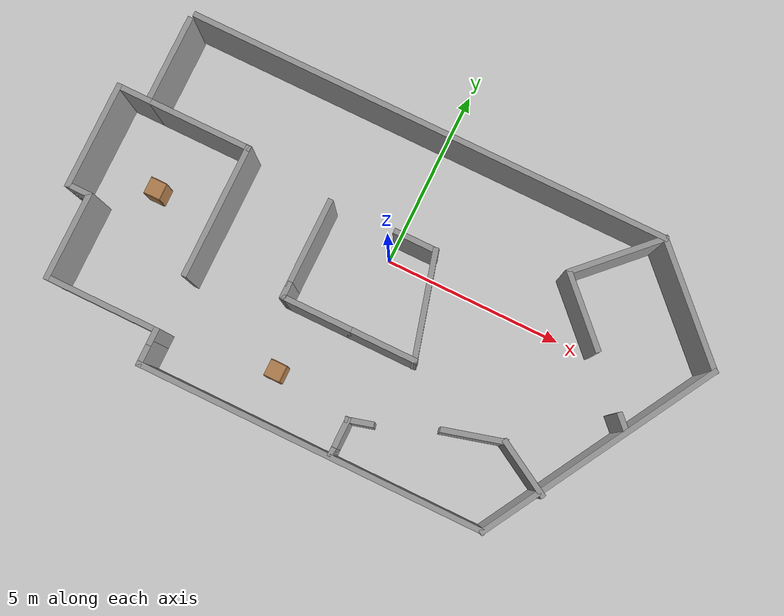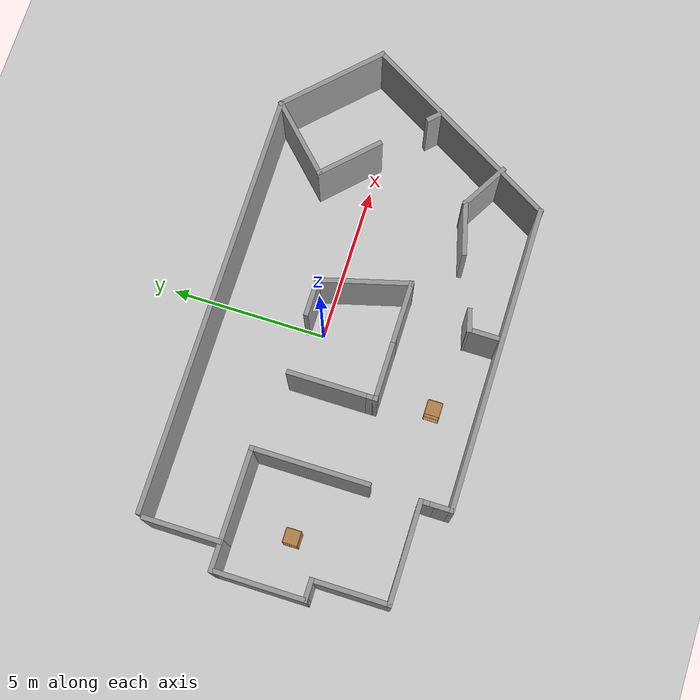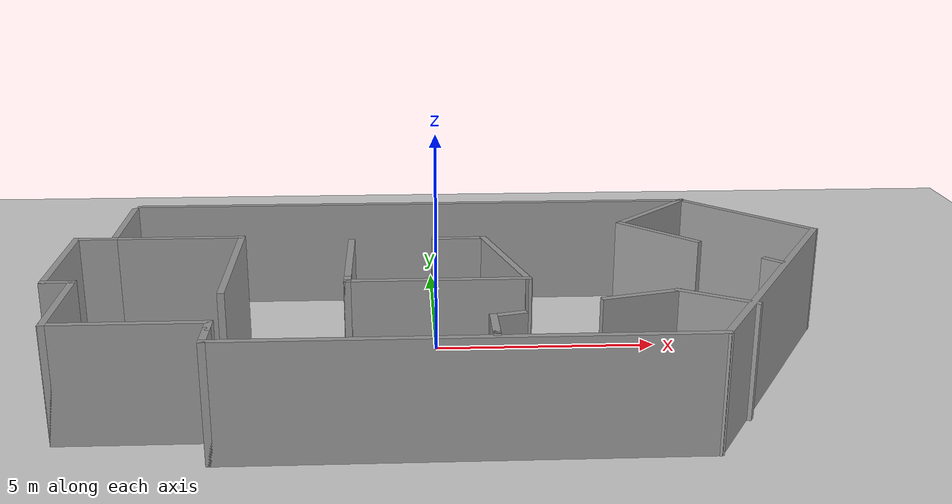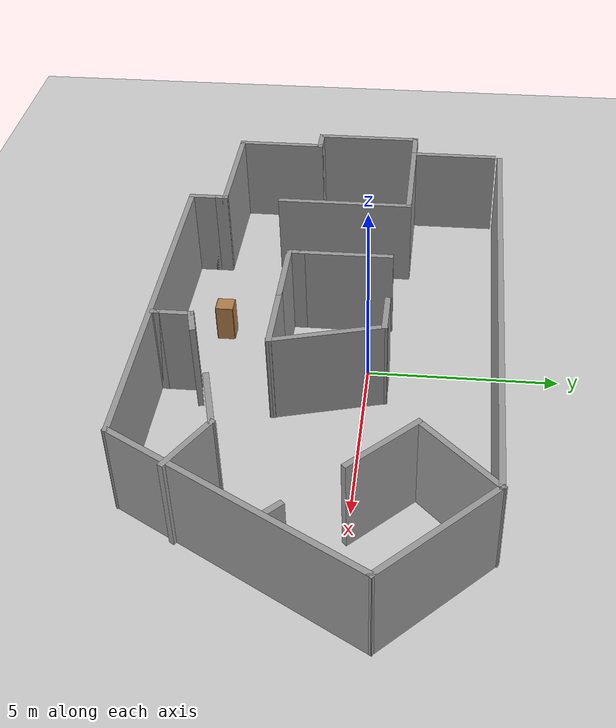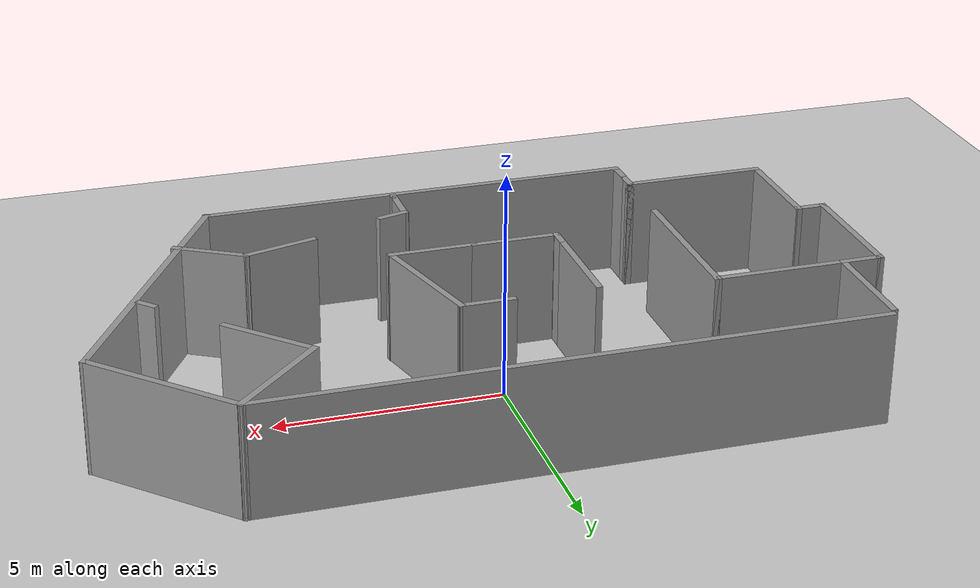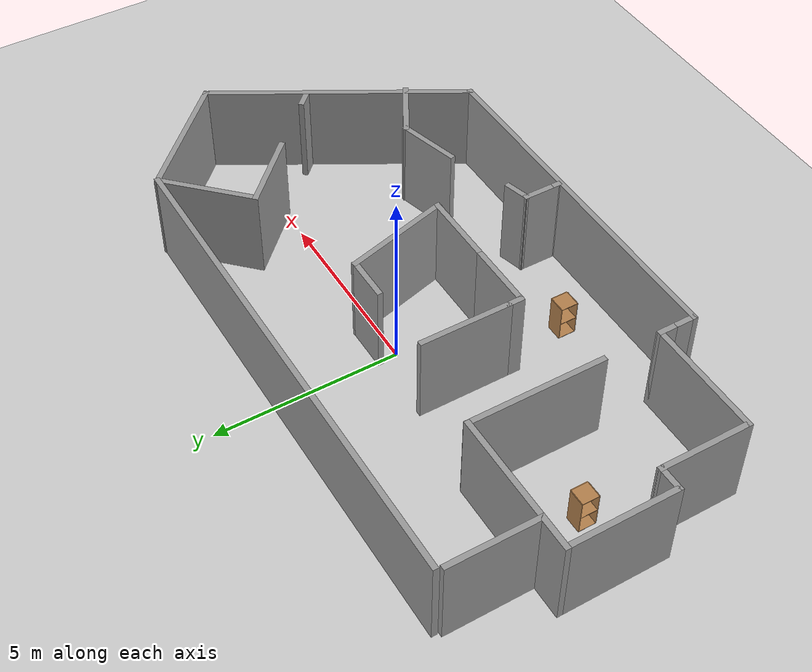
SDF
<sdf version="1.7">
 <world name="default">
  <light name="sun" type="directional">
   <pose>0 0 10 0 -0 0</pose>
   <diffuse>0.8 0.8 0.8 1</diffuse>
   <specular>0.2 0.2 0.2 1</specular>
   <attenuation>
    <range>1000</range>
    <constant>0.9</constant>
    <linear>0.01</linear>
    <quadratic>0.001</quadratic>
   </attenuation>
   <direction>-0.5 0.1 -0.9</direction>
   <spot><inner_angle>0</inner_angle><outer_angle>0</outer_angle><falloff>0</falloff></spot>
  </light>
  <model name="ground_plane">
   <static>1</static>
   <link name="link">
    <collision name="collision">
     <geometry><plane><normal>0 0 1</normal><size>100 100</size></plane></geometry>
     <surface>
      <contact><collide_bitmask>65535</collide_bitmask></contact>
      <friction><ode><mu>100</mu><mu2>50</mu2></ode></friction>
     </surface>
    </collision>
    <visual name="visual">
     <cast_shadows>0</cast_shadows>
     <geometry><plane><normal>0 0 1</normal><size>100 100</size></plane></geometry>
     <material>
      <script><uri>file://media/materials/scripts/gazebo.material</uri><name>Gazebo/Grey</name></script>
     </material>
    </visual>
   </link>
  </model>
  <gravity>0 0 -9.8</gravity>
  <magnetic_field>6e-06 2.3e-05 -4.2e-05</magnetic_field>
  <atmosphere type="adiabatic"/>
  <physics type="ode">
   <max_step_size>0.001</max_step_size>
   <real_time_factor>1</real_time_factor>
   <real_time_update_rate>1000</real_time_update_rate>
  </physics>
  <scene><ambient>0.4 0.4 0.4 1</ambient><background>0.7 0.7 0.7 1</background><shadows>1</shadows></scene>
  <spherical_coordinates>
   <surface_model>EARTH_WGS84</surface_model>
   <latitude_deg>0</latitude_deg>
   <longitude_deg>0</longitude_deg>
   <elevation>0</elevation>
   <heading_deg>0</heading_deg>
  </spherical_coordinates>
  <model name="layer2">
   <pose>0.35471 -1.02226 0 0 -0 0</pose>
   <link name="Wall_10">
    <collision name="Wall_10_Collision">
     <geometry><box><size>0.75 0.15 2.5</size></box></geometry>
     <pose>0 0 1.25 0 -0 0</pose>
    </collision>
    <visual name="Wall_10_Visual">
     <pose>0 0 1.25 0 -0 0</pose>
     <geometry><box><size>0.75 0.15 2.5</size></box></geometry>
     <material>
      <script><uri>file://media/materials/scripts/gazebo.material</uri><name>Gazebo/Grey</name></script>
      <ambient>1 1 1 1</ambient>
     </material>
     <meta><layer>0</layer></meta>
    </visual>
    <pose>-4.74053 -4.04899 0 0 -0 -1.5708</pose>
   </link>
   <link name="Wall_11">
    <collision name="Wall_11_Collision">
     <geometry><box><size>9.75 0.15 2.5</size></box></geometry>
     <pose>0 0 1.25 0 -0 0</pose>
    </collision>
    <visual name="Wall_11_Visual">
     <pose>0 0 1.25 0 -0 0</pose>
     <geometry><box><size>9.75 0.15 2.5</size></box></geometry>
     <material>
      <script><uri>file://media/materials/scripts/gazebo.material</uri><name>Gazebo/Grey</name></script>
      <ambient>1 1 1 1</ambient>
     </material>
     <meta><layer>0</layer></meta>
    </visual>
    <pose>0.059467 -4.34899 0 0 -0 0</pose>
   </link>
   <link name="Wall_14">
    <collision name="Wall_14_Collision">
     <geometry><box><size>7.25 0.15 2.5</size></box></geometry>
     <pose>0 0 1.25 0 -0 0</pose>
    </collision>
    <visual name="Wall_14_Visual">
     <pose>0 0 1.25 0 -0 0</pose>
     <geometry><box><size>7.25 0.15 2.5</size></box></geometry>
     <material>
      <script><uri>file://media/materials/scripts/gazebo.material</uri><name>Gazebo/Grey</name></script>
      <ambient>1 1 1 1</ambient>
     </material>
     <meta><layer>0</layer></meta>
    </visual>
    <pose>6.63447 -1.2746 0 0 -0 1.0472</pose>
   </link>
   <link name="Wall_15">
    <collision name="Wall_15_Collision">
     <geometry><box><size>3.75 0.15 2.5</size></box></geometry>
     <pose>0 0 1.25 0 -0 0</pose>
    </collision>
    <visual name="Wall_15_Visual">
     <pose>0 0 1.25 0 -0 0</pose>
     <geometry><box><size>3.75 0.15 2.5</size></box></geometry>
     <material>
      <script><uri>file://media/materials/scripts/gazebo.material</uri><name>Gazebo/Grey</name></script>
      <ambient>1 1 1 1</ambient>
     </material>
     <meta><layer>0</layer></meta>
    </visual>
    <pose>7.13668 3.07258 0 0 -0 2.35619</pose>
   </link>
   <link name="Wall_16">
    <collision name="Wall_16_Collision">
     <geometry><box><size>13.5 0.15 2.5</size></box></geometry>
     <pose>0 0 1.25 0 -0 0</pose>
    </collision>
    <visual name="Wall_16_Visual">
     <pose>0 0 1.25 0 -0 0</pose>
     <geometry><box><size>13.5 0.15 2.5</size></box></geometry>
     <material>
      <script><uri>file://media/materials/scripts/gazebo.material</uri><name>Gazebo/Grey</name></script>
      <ambient>1 1 1 1</ambient>
     </material>
     <meta><layer>0</layer></meta>
    </visual>
    <pose>-0.811118 4.34537 0 0 -0 3.14159</pose>
   </link>
   <link name="Wall_18">
    <collision name="Wall_18_Collision">
     <geometry><box><size>2.5 0.15 2.5</size></box></geometry>
     <pose>0 0 1.25 0 -0 0</pose>
    </collision>
    <visual name="Wall_18_Visual">
     <pose>0 0 1.25 0 -0 0</pose>
     <geometry><box><size>2.5 0.15 2.5</size></box></geometry>
     <material>
      <script><uri>file://media/materials/scripts/gazebo.material</uri><name>Gazebo/Grey</name></script>
      <ambient>1 1 1 1</ambient>
     </material>
     <meta><layer>0</layer></meta>
    </visual>
    <pose>-2.23724 0.28407 0 0 -0 -1.5708</pose>
   </link>
   <link name="Wall_22">
    <collision name="Wall_22_Collision">
     <geometry><box><size>0.5 0.15 2.5</size></box></geometry>
     <pose>0 0 1.25 0 -0 0</pose>
    </collision>
    <visual name="Wall_22_Visual">
     <pose>0 0 1.25 0 -0 0</pose>
     <geometry><box><size>0.5 0.15 2.5</size></box></geometry>
     <material>
      <script><uri>file://media/materials/scripts/gazebo.material</uri><name>Gazebo/Grey</name></script>
      <ambient>1 1 1 1</ambient>
     </material>
     <meta><layer>0</layer></meta>
    </visual>
    <pose>-2.23724 -1.06593 0 0 -0 -1.5708</pose>
   </link>
   <link name="Wall_23">
    <collision name="Wall_23_Collision">
     <geometry><box><size>0.16 0.15 2.5</size></box></geometry>
     <pose>0 0 1.25 0 -0 0</pose>
    </collision>
    <visual name="Wall_23_Visual">
     <pose>0 0 1.25 0 -0 0</pose>
     <geometry><box><size>0.16 0.15 2.5</size></box></geometry>
     <material>
      <script><uri>file://media/materials/scripts/gazebo.material</uri><name>Gazebo/Grey</name></script>
      <ambient>1 1 1 1</ambient>
     </material>
     <meta><layer>0</layer></meta>
    </visual>
    <pose>-2.23224 -1.24093 0 0 -0 0</pose>
   </link>
   <link name="Wall_24">
    <collision name="Wall_24_Collision">
     <geometry><box><size>2 0.15 2.5</size></box></geometry>
     <pose>0 0 1.25 0 -0 0</pose>
    </collision>
    <visual name="Wall_24_Visual">
     <pose>0 0 1.25 0 -0 0</pose>
     <geometry><box><size>2 0.15 2.5</size></box></geometry>
     <material>
      <script><uri>file://media/materials/scripts/gazebo.material</uri><name>Gazebo/Grey</name></script>
      <ambient>1 1 1 1</ambient>
     </material>
     <meta><layer>0</layer></meta>
    </visual>
    <pose>-1.30224 -1.24093 0 0 -0 0</pose>
   </link>
   <link name="Wall_28">
    <collision name="Wall_28_Collision">
     <geometry><box><size>0.15 0.15 2.5</size></box></geometry>
     <pose>0 0 1.25 0 -0 0</pose>
    </collision>
    <visual name="Wall_28_Visual">
     <pose>0 0 1.25 0 -0 0</pose>
     <geometry><box><size>0.15 0.15 2.5</size></box></geometry>
     <material>
      <script><uri>file://media/materials/scripts/gazebo.material</uri><name>Gazebo/Grey</name></script>
      <ambient>1 1 1 1</ambient>
     </material>
     <meta><layer>0</layer></meta>
    </visual>
    <pose>5.86388 4.34537 0 0 -0 0</pose>
   </link>
   <link name="Wall_29">
    <collision name="Wall_29_Collision">
     <geometry><box><size>2.75 0.15 2.5</size></box></geometry>
     <pose>0 0 1.25 0 -0 0</pose>
    </collision>
    <visual name="Wall_29_Visual">
     <pose>0 0 1.25 0 -0 0</pose>
     <geometry><box><size>2.75 0.15 2.5</size></box></geometry>
     <material>
      <script><uri>file://media/materials/scripts/gazebo.material</uri><name>Gazebo/Grey</name></script>
      <ambient>1 1 1 1</ambient>
     </material>
     <meta><layer>0</layer></meta>
    </visual>
    <pose>4.94464 3.42614 0 0 -0 -2.35619</pose>
   </link>
   <link name="Wall_3">
    <collision name="Wall_3_Collision">
     <geometry><box><size>2.5 0.15 2.5</size></box></geometry>
     <pose>0 0 1.25 0 -0 0</pose>
    </collision>
    <visual name="Wall_3_Visual">
     <pose>0 0 1.25 0 -0 0</pose>
     <geometry><box><size>2.5 0.15 2.5</size></box></geometry>
     <material>
      <script><uri>file://media/materials/scripts/gazebo.material</uri><name>Gazebo/Grey</name></script>
      <ambient>1 1 1 1</ambient>
     </material>
     <meta><layer>0</layer></meta>
    </visual>
    <pose>-7.59053 2.97601 0 0 -0 -1.5708</pose>
   </link>
   <link name="Wall_30">
    <collision name="Wall_30_Collision">
     <geometry><box><size>2.25 0.15 2.5</size></box></geometry>
     <pose>0 0 1.25 0 -0 0</pose>
    </collision>
    <visual name="Wall_30_Visual">
     <pose>0 0 1.25 0 -0 0</pose>
     <geometry><box><size>2.25 0.15 2.5</size></box></geometry>
     <material>
      <script><uri>file://media/materials/scripts/gazebo.material</uri><name>Gazebo/Grey</name></script>
      <ambient>1 1 1 1</ambient>
     </material>
     <meta><layer>0</layer></meta>
    </visual>
    <pose>4.76787 1.76443 0 0 -0 -0.785398</pose>
   </link>
   <link name="Wall_34">
    <collision name="Wall_34_Collision">
     <geometry><box><size>0.5 0.15 2.5</size></box></geometry>
     <pose>0 0 1.25 0 -0 0</pose>
    </collision>
    <visual name="Wall_34_Visual">
     <pose>0 0 1.25 0 -0 0</pose>
     <geometry><box><size>0.5 0.15 2.5</size></box></geometry>
     <material>
      <script><uri>file://media/materials/scripts/gazebo.material</uri><name>Gazebo/Grey</name></script>
      <ambient>1 1 1 1</ambient>
     </material>
     <meta><layer>0</layer></meta>
    </visual>
    <pose>6.84944 -0.347136 0 0 -0 -0.785398</pose>
   </link>
   <link name="Wall_36">
    <collision name="Wall_36_Collision">
     <geometry><box><size>3 0.15 2.5</size></box></geometry>
     <pose>0 0 1.25 0 -0 0</pose>
    </collision>
    <visual name="Wall_36_Visual">
     <pose>0 0 1.25 0 -0 0</pose>
     <geometry><box><size>3 0.15 2.5</size></box></geometry>
     <material>
      <script><uri>file://media/materials/scripts/gazebo.material</uri><name>Gazebo/Grey</name></script>
      <ambient>1 1 1 1</ambient>
     </material>
     <meta><layer>0</layer></meta>
    </visual>
    <pose>-6.16553 1.80101 0 0 -0 0</pose>
   </link>
   <link name="Wall_37">
    <collision name="Wall_37_Collision">
     <geometry><box><size>0.16 0.15 2.5</size></box></geometry>
     <pose>0 0 1.25 0 -0 0</pose>
    </collision>
    <visual name="Wall_37_Visual">
     <pose>0 0 1.25 0 -0 0</pose>
     <geometry><box><size>0.16 0.15 2.5</size></box></geometry>
     <material>
      <script><uri>file://media/materials/scripts/gazebo.material</uri><name>Gazebo/Grey</name></script>
      <ambient>1 1 1 1</ambient>
     </material>
     <meta><layer>0</layer></meta>
    </visual>
    <pose>-4.73553 1.80101 0 0 -0 0</pose>
   </link>
   <link name="Wall_38">
    <collision name="Wall_38_Collision">
     <geometry><box><size>3.75 0.15 2.5</size></box></geometry>
     <pose>0 0 1.25 0 -0 0</pose>
    </collision>
    <visual name="Wall_38_Visual">
     <pose>0 0 1.25 0 -0 0</pose>
     <geometry><box><size>3.75 0.15 2.5</size></box></geometry>
     <material>
      <script><uri>file://media/materials/scripts/gazebo.material</uri><name>Gazebo/Grey</name></script>
      <ambient>1 1 1 1</ambient>
     </material>
     <meta><layer>0</layer></meta>
    </visual>
    <pose>-4.73053 0.00101 0 0 -0 -1.5708</pose>
   </link>
   <link name="Wall_4">
    <collision name="Wall_4_Collision">
     <geometry><box><size>1 0.15 2.5</size></box></geometry>
     <pose>0 0 1.25 0 -0 0</pose>
    </collision>
    <visual name="Wall_4_Visual">
     <pose>0 0 1.25 0 -0 0</pose>
     <geometry><box><size>1 0.15 2.5</size></box></geometry>
     <material>
      <script><uri>file://media/materials/scripts/gazebo.material</uri><name>Gazebo/Grey</name></script>
      <ambient>1 1 1 1</ambient>
     </material>
     <meta><layer>0</layer></meta>
    </visual>
    <pose>-8.01553 1.80101 0 0 -0 3.14159</pose>
   </link>
   <link name="Wall_40">
    <collision name="Wall_40_Collision">
     <geometry><box><size>2 0.15 2.5</size></box></geometry>
     <pose>0 0 1.25 0 -0 0</pose>
    </collision>
    <visual name="Wall_40_Visual">
     <pose>0 0 1.25 0 -0 0</pose>
     <geometry><box><size>2 0.15 2.5</size></box></geometry>
     <material>
      <script><uri>file://media/materials/scripts/gazebo.material</uri><name>Gazebo/Grey</name></script>
      <ambient>1 1 1 1</ambient>
     </material>
     <meta><layer>0</layer></meta>
    </visual>
    <pose>0.547757 -1.24093 0 0 -0 0</pose>
   </link>
   <link name="Wall_41">
    <collision name="Wall_41_Collision">
     <geometry><box><size>3 0.15 2.5</size></box></geometry>
     <pose>0 0 1.25 0 -0 0</pose>
    </collision>
    <visual name="Wall_41_Visual">
     <pose>0 0 1.25 0 -0 0</pose>
     <geometry><box><size>3 0.15 2.5</size></box></geometry>
     <material>
      <script><uri>file://media/materials/scripts/gazebo.material</uri><name>Gazebo/Grey</name></script>
      <ambient>1 1 1 1</ambient>
     </material>
     <meta><layer>0</layer></meta>
    </visual>
    <pose>1.10394 0.135514 0 0 -0 1.8326</pose>
   </link>
   <link name="Wall_42">
    <collision name="Wall_42_Collision">
     <geometry><box><size>1.25 0.15 2.5</size></box></geometry>
     <pose>0 0 1.25 0 -0 0</pose>
    </collision>
    <visual name="Wall_42_Visual">
     <pose>0 0 1.25 0 -0 0</pose>
     <geometry><box><size>1.25 0.15 2.5</size></box></geometry>
     <material>
      <script><uri>file://media/materials/scripts/gazebo.material</uri><name>Gazebo/Grey</name></script>
      <ambient>1 1 1 1</ambient>
     </material>
     <meta><layer>0</layer></meta>
    </visual>
    <pose>0.185122 1.51196 0 0 -0 3.14159</pose>
   </link>
   <link name="Wall_5">
    <collision name="Wall_5_Collision">
     <geometry><box><size>3 0.15 2.5</size></box></geometry>
     <pose>0 0 1.25 0 -0 0</pose>
    </collision>
    <visual name="Wall_5_Visual">
     <pose>0 0 1.25 0 -0 0</pose>
     <geometry><box><size>3 0.15 2.5</size></box></geometry>
     <material>
      <script><uri>file://media/materials/scripts/gazebo.material</uri><name>Gazebo/Grey</name></script>
      <ambient>1 1 1 1</ambient>
     </material>
     <meta><layer>0</layer></meta>
    </visual>
    <pose>-8.44053 0.37601 0 0 -0 -1.5708</pose>
   </link>
   <link name="Wall_52">
    <collision name="Wall_52_Collision">
     <geometry><box><size>1.75 0.15 2.5</size></box></geometry>
     <pose>0 0 1.25 0 -0 0</pose>
    </collision>
    <visual name="Wall_52_Visual">
     <pose>0 0 1.25 0 -0 0</pose>
     <geometry><box><size>1.75 0.15 2.5</size></box></geometry>
     <material>
      <script><uri>file://media/materials/scripts/gazebo.material</uri><name>Gazebo/Grey</name></script>
      <ambient>1 1 1 1</ambient>
     </material>
     <meta><layer>0</layer></meta>
    </visual>
    <pose>5.11517 -2.48474 0 0 -0 2.61799</pose>
   </link>
   <link name="Wall_53">
    <collision name="Wall_53_Collision">
     <geometry><box><size>1.75 0.15 2.5</size></box></geometry>
     <pose>0 0 1.25 0 -0 0</pose>
    </collision>
    <visual name="Wall_53_Visual">
     <pose>0 0 1.25 0 -0 0</pose>
     <geometry><box><size>1.75 0.15 2.5</size></box></geometry>
     <material>
      <script><uri>file://media/materials/scripts/gazebo.material</uri><name>Gazebo/Grey</name></script>
      <ambient>1 1 1 1</ambient>
     </material>
     <meta><layer>0</layer></meta>
    </visual>
    <pose>3.64961 -2.2918 0 0 -0 -2.87979</pose>
   </link>
   <link name="Wall_57">
    <collision name="Wall_57_Collision">
     <geometry><box><size>0.75 0.15 2.5</size></box></geometry>
     <pose>0 0 1.25 0 -0 0</pose>
    </collision>
    <visual name="Wall_57_Visual">
     <pose>0 0 1.25 0 -0 0</pose>
     <geometry><box><size>0.75 0.15 2.5</size></box></geometry>
     <material>
      <script><uri>file://media/materials/scripts/gazebo.material</uri><name>Gazebo/Grey</name></script>
      <ambient>1 1 1 1</ambient>
     </material>
     <meta><layer>0</layer></meta>
    </visual>
    <pose>0.899085 -3.2377 0 0 -0 -2.87979</pose>
   </link>
   <link name="Wall_6">
    <collision name="Wall_6_Collision">
     <geometry><box><size>0.75 0.15 2.5</size></box></geometry>
     <pose>0 0 1.25 0 -0 0</pose>
    </collision>
    <visual name="Wall_6_Visual">
     <pose>0 0 1.25 0 -0 0</pose>
     <geometry><box><size>0.75 0.15 2.5</size></box></geometry>
     <material>
      <script><uri>file://media/materials/scripts/gazebo.material</uri><name>Gazebo/Grey</name></script>
      <ambient>1 1 1 1</ambient>
     </material>
     <meta><layer>0</layer></meta>
    </visual>
    <pose>-8.14053 -1.04899 0 0 -0 0</pose>
   </link>
   <link name="Wall_62">
    <collision name="Wall_62_Collision">
     <geometry><box><size>0.15 0.15 2.5</size></box></geometry>
     <pose>0 0 1.25 0 -0 0</pose>
    </collision>
    <visual name="Wall_62_Visual">
     <pose>0 0 1.25 0 -0 0</pose>
     <geometry><box><size>0.15 0.15 2.5</size></box></geometry>
     <material>
      <script><uri>file://media/materials/scripts/gazebo.material</uri><name>Gazebo/Grey</name></script>
      <ambient>1 1 1 1</ambient>
     </material>
     <meta><layer>0</layer></meta>
    </visual>
    <pose>0.609307 -4.16535 0 0 -0 0</pose>
   </link>
   <link name="Wall_63">
    <collision name="Wall_63_Collision">
     <geometry><box><size>0.15 0.15 2.5</size></box></geometry>
     <pose>0 0 1.25 0 -0 0</pose>
    </collision>
    <visual name="Wall_63_Visual">
     <pose>0 0 1.25 0 -0 0</pose>
     <geometry><box><size>0.15 0.15 2.5</size></box></geometry>
     <material>
      <script><uri>file://media/materials/scripts/gazebo.material</uri><name>Gazebo/Grey</name></script>
      <ambient>1 1 1 1</ambient>
     </material>
     <meta><layer>0</layer></meta>
    </visual>
    <pose>0.609307 -4.16535 0 0 -0 0</pose>
   </link>
   <link name="Wall_65">
    <collision name="Wall_65_Collision">
     <geometry><box><size>1 0.15 2.5</size></box></geometry>
     <pose>0 0 1.25 0 -0 0</pose>
    </collision>
    <visual name="Wall_65_Visual">
     <pose>0 0 1.25 0 -0 0</pose>
     <geometry><box><size>1 0.15 2.5</size></box></geometry>
     <material>
      <script><uri>file://media/materials/scripts/gazebo.material</uri><name>Gazebo/Grey</name></script>
      <ambient>1 1 1 1</ambient>
     </material>
     <meta><layer>0</layer></meta>
    </visual>
    <pose>0.609307 -3.74035 0 0 -0 -1.5708</pose>
   </link>
   <link name="Wall_66">
    <collision name="Wall_66_Collision">
     <geometry><box><size>0.25 0.15 2.5</size></box></geometry>
     <pose>0 0 1.25 0 -0 0</pose>
    </collision>
    <visual name="Wall_66_Visual">
     <pose>0 0 1.25 0 -0 0</pose>
     <geometry><box><size>0.25 0.15 2.5</size></box></geometry>
     <material>
      <script><uri>file://media/materials/scripts/gazebo.material</uri><name>Gazebo/Grey</name></script>
      <ambient>1 1 1 1</ambient>
     </material>
     <meta><layer>0</layer></meta>
    </visual>
    <pose>0.609307 -4.21535 0 0 -0 -1.5708</pose>
   </link>
   <link name="Wall_7">
    <collision name="Wall_7_Collision">
     <geometry><box><size>2.5 0.15 2.5</size></box></geometry>
     <pose>0 0 1.25 0 -0 0</pose>
    </collision>
    <visual name="Wall_7_Visual">
     <pose>0 0 1.25 0 -0 0</pose>
     <geometry><box><size>2.5 0.15 2.5</size></box></geometry>
     <material>
      <script><uri>file://media/materials/scripts/gazebo.material</uri><name>Gazebo/Grey</name></script>
      <ambient>1 1 1 1</ambient>
     </material>
     <meta><layer>0</layer></meta>
    </visual>
    <pose>-7.84053 -2.22399 0 0 -0 -1.5708</pose>
   </link>
   <link name="Wall_8">
    <collision name="Wall_8_Collision">
     <geometry><box><size>3.25 0.15 2.5</size></box></geometry>
     <pose>0 0 1.25 0 -0 0</pose>
    </collision>
    <visual name="Wall_8_Visual">
     <pose>0 0 1.25 0 -0 0</pose>
     <geometry><box><size>3.25 0.15 2.5</size></box></geometry>
     <material>
      <script><uri>file://media/materials/scripts/gazebo.material</uri><name>Gazebo/Grey</name></script>
      <ambient>1 1 1 1</ambient>
     </material>
     <meta><layer>0</layer></meta>
    </visual>
    <pose>-6.29053 -3.39899 0 0 -0 0</pose>
   </link>
   <link name="Wall_9">
    <collision name="Wall_9_Collision">
     <geometry><box><size>0.5 0.15 2.5</size></box></geometry>
     <pose>0 0 1.25 0 -0 0</pose>
    </collision>
    <visual name="Wall_9_Visual">
     <pose>0 0 1.25 0 -0 0</pose>
     <geometry><box><size>0.5 0.15 2.5</size></box></geometry>
     <material>
      <script><uri>file://media/materials/scripts/gazebo.material</uri><name>Gazebo/Grey</name></script>
      <ambient>1 1 1 1</ambient>
     </material>
     <meta><layer>0</layer></meta>
    </visual>
    <pose>-4.74053 -3.57399 0 0 -0 -1.5708</pose>
   </link>
   <static>1</static>
  </model>
  <model name="cabinet">
   <static>1</static>
   <link name="cabinet_bottom_plate">
    <inertial>
     <pose>0 0 -1 0 -0 0</pose>
     <inertia><ixx>2.05</ixx><ixy>0</ixy><ixz>0</ixz><iyy>2.05</iyy><iyz>0</iyz><izz>2.05</izz></inertia>
     <mass>25</mass>
    </inertial>
    <collision name="cabinet_bottom_plate_geom">
     <pose>0 0 0.01 0 -0 0</pose>
     <geometry><box><size>0.45 0.45 0.02</size></box></geometry>
    </collision>
    <visual name="cabinet_bottom_plate_geom_visual">
     <pose>0 0 0.01 0 -0 0</pose>
     <geometry><box><size>0.45 0.45 0.02</size></box></geometry>
     <material>
      <script><uri>file://media/materials/scripts/gazebo.material</uri><name>Gazebo/Wood</name></script>
     </material>
    </visual>
    <collision name="cabinet_bottom_plate_geom_cabinet_back_plate">
     <pose>0.235 0 0.51 0 -0 0</pose>
     <geometry><box><size>0.02 0.45 1.02</size></box></geometry>
    </collision>
    <visual name="cabinet_bottom_plate_geom_cabinet_back_plate_visual">
     <pose>0.235 0 0.51 0 -0 0</pose>
     <geometry><box><size>0.02 0.45 1.02</size></box></geometry>
     <material>
      <script><uri>file://media/materials/scripts/gazebo.material</uri><name>Gazebo/Wood</name></script>
     </material>
    </visual>
    <collision name="cabinet_bottom_plate_geom_cabinet_left_plate">
     <pose>0 0.235 0.51 0 -0 0</pose>
     <geometry><box><size>0.45 0.02 1.02</size></box></geometry>
    </collision>
    <visual name="cabinet_bottom_plate_geom_cabinet_left_plate_visual">
     <pose>0 0.235 0.51 0 -0 0</pose>
     <geometry><box><size>0.45 0.02 1.02</size></box></geometry>
     <material>
      <script><uri>file://media/materials/scripts/gazebo.material</uri><name>Gazebo/Wood</name></script>
     </material>
    </visual>
    <collision name="cabinet_bottom_plate_geom_cabinet_middle_plate">
     <pose>0 0 0.51 0 -0 0</pose>
     <geometry><box><size>0.45 0.45 0.02</size></box></geometry>
    </collision>
    <visual name="cabinet_bottom_plate_geom_cabinet_middle_plate_visual">
     <pose>0 0 0.51 0 -0 0</pose>
     <geometry><box><size>0.45 0.45 0.02</size></box></geometry>
     <material>
      <script><uri>file://media/materials/scripts/gazebo.material</uri><name>Gazebo/Wood</name></script>
     </material>
    </visual>
    <collision name="cabinet_bottom_plate_geom_cabinet_right_plate">
     <pose>0 -0.235 0.51 0 -0 0</pose>
     <geometry><box><size>0.45 0.02 1.02</size></box></geometry>
    </collision>
    <visual name="cabinet_bottom_plate_geom_cabinet_right_plate_visual">
     <pose>0 -0.235 0.51 0 -0 0</pose>
     <geometry><box><size>0.45 0.02 1.02</size></box></geometry>
     <material>
      <script><uri>file://media/materials/scripts/gazebo.material</uri><name>Gazebo/Wood</name></script>
     </material>
    </visual>
    <collision name="cabinet_bottom_plate_geom_cabinet_top_plate">
     <pose>0 0 1.01 0 -0 0</pose>
     <geometry><box><size>0.45 0.45 0.02</size></box></geometry>
    </collision>
    <visual name="cabinet_bottom_plate_geom_cabinet_top_plate_visual">
     <pose>0 0 1.01 0 -0 0</pose>
     <geometry><box><size>0.45 0.45 0.02</size></box></geometry>
     <material>
      <script><uri>file://media/materials/scripts/gazebo.material</uri><name>Gazebo/Wood</name></script>
     </material>
    </visual>
   </link>
   <pose>-6.37844 -1.05203 0 0 -0 0</pose>
  </model>
  <model name="cabinet_0">
   <static>1</static>
   <link name="cabinet_bottom_plate">
    <inertial>
     <pose>0 0 -1 0 -0 0</pose>
     <inertia><ixx>2.05</ixx><ixy>0</ixy><ixz>0</ixz><iyy>2.05</iyy><iyz>0</iyz><izz>2.05</izz></inertia>
     <mass>25</mass>
    </inertial>
    <collision name="cabinet_bottom_plate_geom">
     <pose>0 0 0.01 0 -0 0</pose>
     <geometry><box><size>0.45 0.45 0.02</size></box></geometry>
    </collision>
    <visual name="cabinet_bottom_plate_geom_visual">
     <pose>0 0 0.01 0 -0 0</pose>
     <geometry><box><size>0.45 0.45 0.02</size></box></geometry>
     <material>
      <script><uri>file://media/materials/scripts/gazebo.material</uri><name>Gazebo/Wood</name></script>
     </material>
    </visual>
    <collision name="cabinet_bottom_plate_geom_cabinet_back_plate">
     <pose>0.235 0 0.51 0 -0 0</pose>
     <geometry><box><size>0.02 0.45 1.02</size></box></geometry>
    </collision>
    <visual name="cabinet_bottom_plate_geom_cabinet_back_plate_visual">
     <pose>0.235 0 0.51 0 -0 0</pose>
     <geometry><box><size>0.02 0.45 1.02</size></box></geometry>
     <material>
      <script><uri>file://media/materials/scripts/gazebo.material</uri><name>Gazebo/Wood</name></script>
     </material>
    </visual>
    <collision name="cabinet_bottom_plate_geom_cabinet_left_plate">
     <pose>0 0.235 0.51 0 -0 0</pose>
     <geometry><box><size>0.45 0.02 1.02</size></box></geometry>
    </collision>
    <visual name="cabinet_bottom_plate_geom_cabinet_left_plate_visual">
     <pose>0 0.235 0.51 0 -0 0</pose>
     <geometry><box><size>0.45 0.02 1.02</size></box></geometry>
     <material>
      <script><uri>file://media/materials/scripts/gazebo.material</uri><name>Gazebo/Wood</name></script>
     </material>
    </visual>
    <collision name="cabinet_bottom_plate_geom_cabinet_middle_plate">
     <pose>0 0 0.51 0 -0 0</pose>
     <geometry><box><size>0.45 0.45 0.02</size></box></geometry>
    </collision>
    <visual name="cabinet_bottom_plate_geom_cabinet_middle_plate_visual">
     <pose>0 0 0.51 0 -0 0</pose>
     <geometry><box><size>0.45 0.45 0.02</size></box></geometry>
     <material>
      <script><uri>file://media/materials/scripts/gazebo.material</uri><name>Gazebo/Wood</name></script>
     </material>
    </visual>
    <collision name="cabinet_bottom_plate_geom_cabinet_right_plate">
     <pose>0 -0.235 0.51 0 -0 0</pose>
     <geometry><box><size>0.45 0.02 1.02</size></box></geometry>
    </collision>
    <visual name="cabinet_bottom_plate_geom_cabinet_right_plate_visual">
     <pose>0 -0.235 0.51 0 -0 0</pose>
     <geometry><box><size>0.45 0.02 1.02</size></box></geometry>
     <material>
      <script><uri>file://media/materials/scripts/gazebo.material</uri><name>Gazebo/Wood</name></script>
     </material>
    </visual>
    <collision name="cabinet_bottom_plate_geom_cabinet_top_plate">
     <pose>0 0 1.01 0 -0 0</pose>
     <geometry><box><size>0.45 0.45 0.02</size></box></geometry>
    </collision>
    <visual name="cabinet_bottom_plate_geom_cabinet_top_plate_visual">
     <pose>0 0 1.01 0 -0 0</pose>
     <geometry><box><size>0.45 0.45 0.02</size></box></geometry>
     <material>
      <script><uri>file://media/materials/scripts/gazebo.material</uri><name>Gazebo/Wood</name></script>
     </material>
    </visual>
   </link>
   <pose>-1.37433 -3.99437 0 0 -0 0</pose>
  </model>
 </world>
</sdf>
